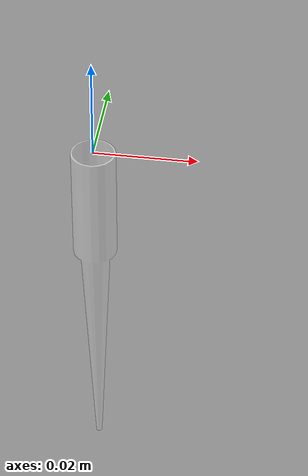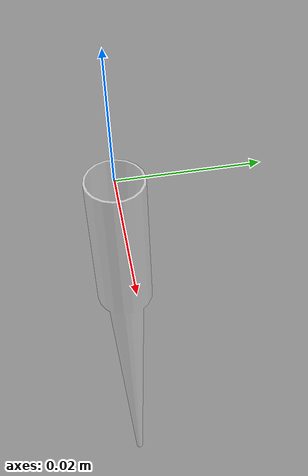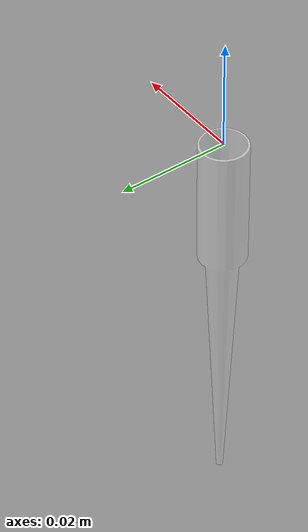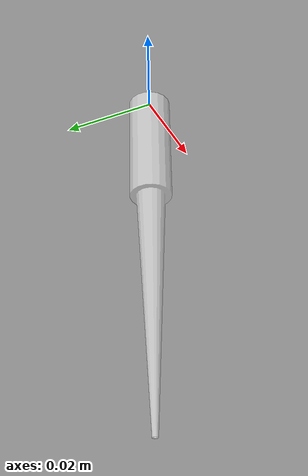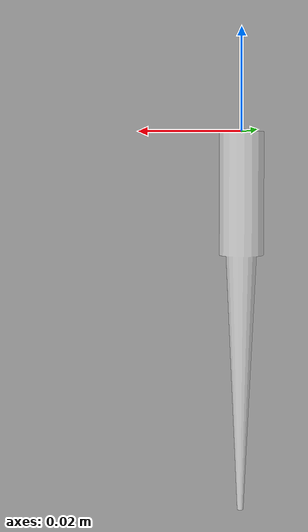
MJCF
<mujoco model="pipette_tip_1p5">
  <compiler angle="radian" meshdir="../../assets/"/>

  <asset>
    <mesh name="pipette_tip-visual_visual" file="container/tip_200ul_vis/visual.obj" scale="0.0015 0.0015 0.0015"/>
    <mesh name="pipette_tip-collision_tip_collision_0" file="container/tip_200ul_col/tip_collision_0.obj" scale="0.0015 0.0015 0.0015"/>
  </asset>

  <worldbody>
    <body name="pipette_tip">
      <site name="mount_site" pos="0 0 0.004" quat="1 0 0 0" type="sphere" size="0.001" group="5" rgba="1 0.1 0.1 0.8"/>
      <site name="tip_end_site" pos="0 0 -0.036" quat="1 0 0 0" type="sphere" size="0.001" group="5" rgba="0.1 0.9 0.1 0.8"/>
      <geom type="mesh" contype="0" conaffinity="0" group="2" mesh="pipette_tip-visual_visual" rgba="1 1 1 0.5"/>
      <geom type="mesh" group="3" mesh="pipette_tip-collision_tip_collision_0"/>
      <geom size="0.00431696 0.012" pos="0 0 -0.012" type="cylinder" conaffinity="3" group="3"/>
    </body>
  </worldbody>
</mujoco>
